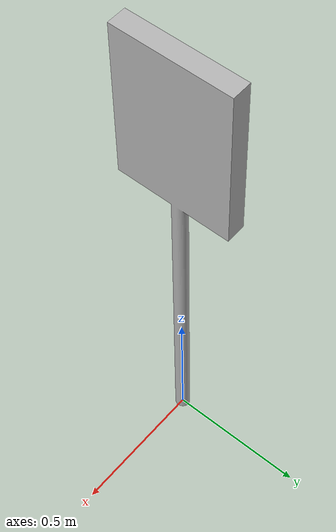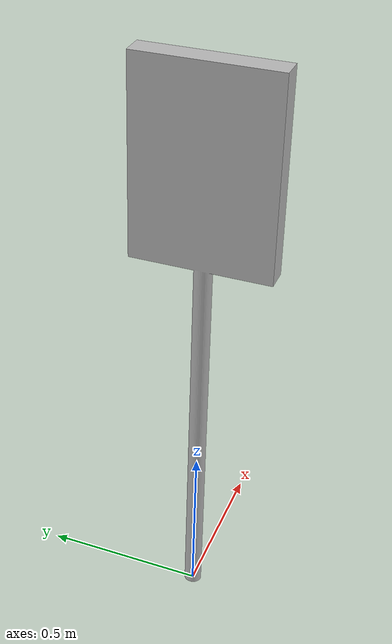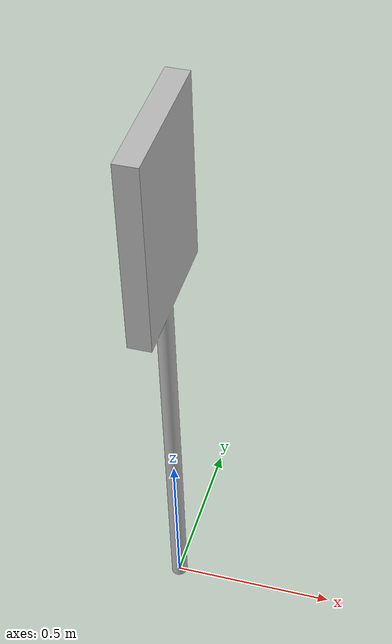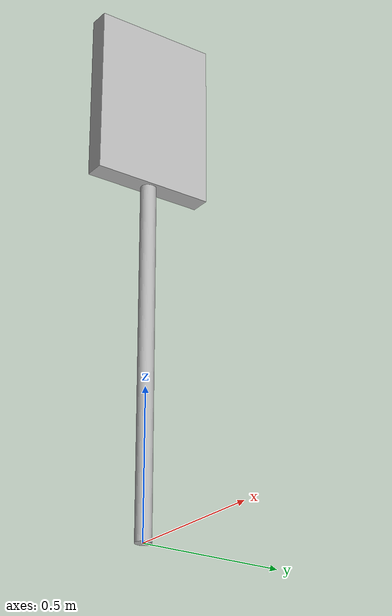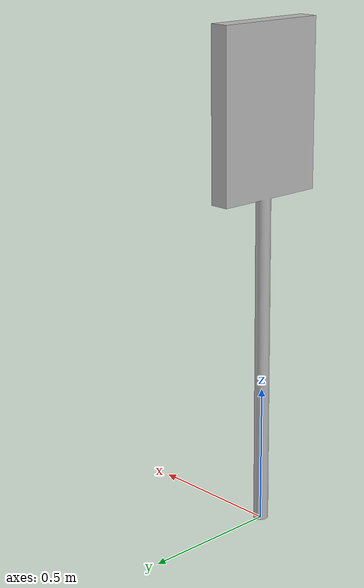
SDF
<?xml version='1.0'?>
<sdf version='1.7'>
  <model name='sign10'>
    <static>1</static>

    <link name='link'>
      <collision name='collision'>
        <geometry>
          <mesh>
            <uri>model://sign_10/meshs/sign10.dae</uri>
            <scale>1 1 1</scale>
          </mesh>
        </geometry>
      </collision>

      <visual name='visual'>
        <geometry>
          <mesh>
            <uri>model://sign_10/meshs/sign10.dae</uri>
            <scale>1 1 1</scale>
          </mesh>
        </geometry>
      </visual>
    </link>
  </model>
</sdf>
